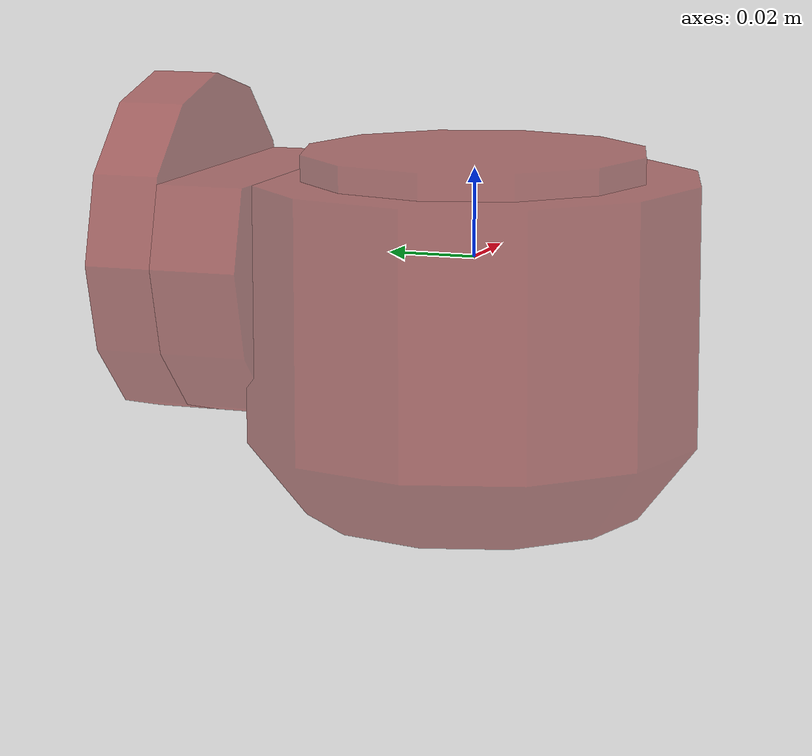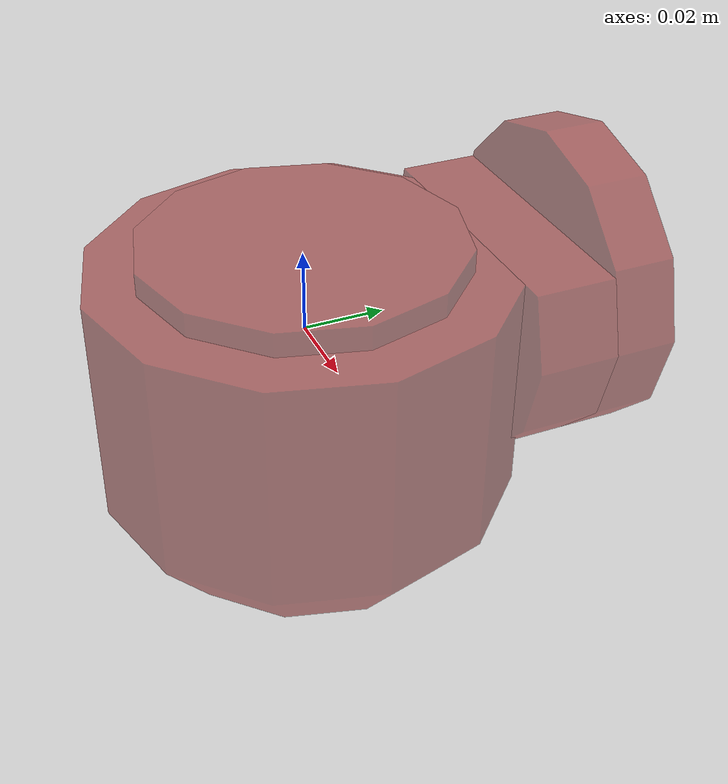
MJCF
<?xml version="1.0" encoding="UTF-8"?>
<mujoco model="manual_collision">
  <compiler angle="radian"/>
  <default>
    <default class="collision">
      <geom type="mesh" group="0" rgba="0.5 0 0 0.5"/>
    </default>
  </default>
  <asset>
    <mesh name="_sn_python1.002_manual_collision_1" file="meshes/sn_python1.002_manual_collision_1.stl"/>
    <mesh name="_sn_python1.002_manual_collision_2" file="meshes/sn_python1.002_manual_collision_2.stl"/>
    <mesh name="_sn_python1.002_manual_collision_3" file="meshes/sn_python1.002_manual_collision_3.stl"/>
    <mesh name="_sn_python1.002_manual_collision_4" file="meshes/sn_python1.002_manual_collision_4.stl"/>
  </asset>
  <worldbody>
    <body name="python1.002" pos="0 0 0" quat="1 0 0 0">
      <inertial pos="0 0 0" mass="1" diaginertia="1e-4 1e-4 1e-4"/>
      <geom class="collision" type="mesh" mesh="_sn_python1.002_manual_collision_1" pos="0 0 0" quat="1 0 0 0"/>
      <geom class="collision" type="mesh" mesh="_sn_python1.002_manual_collision_2" pos="0 0 0" quat="1 0 0 0"/>
      <geom class="collision" type="mesh" mesh="_sn_python1.002_manual_collision_3" pos="0 0 0" quat="1 0 0 0"/>
      <geom class="collision" type="mesh" mesh="_sn_python1.002_manual_collision_4" pos="0 0 0" quat="1 0 0 0"/>
    </body>
  </worldbody>
</mujoco>
